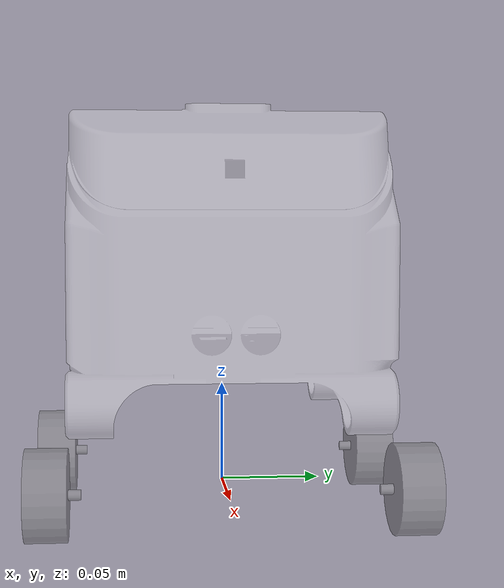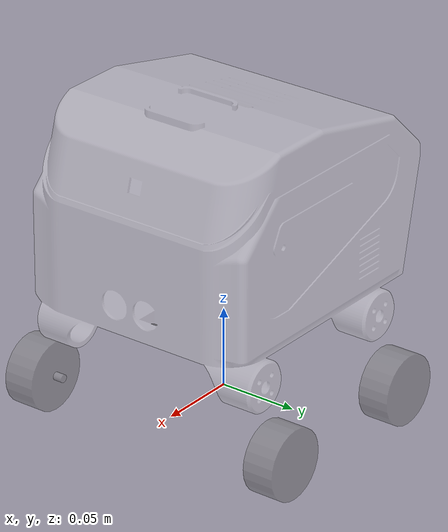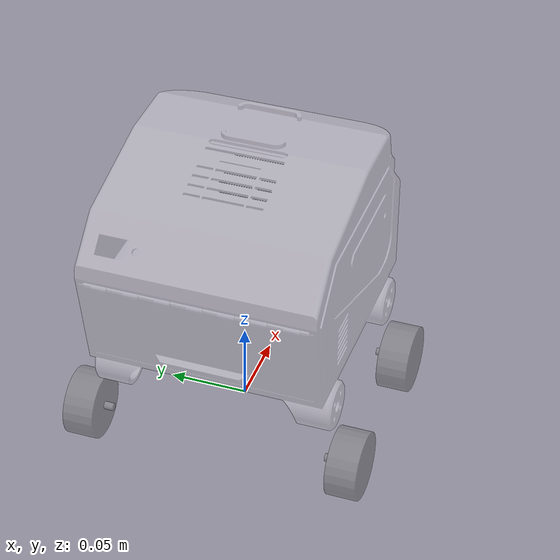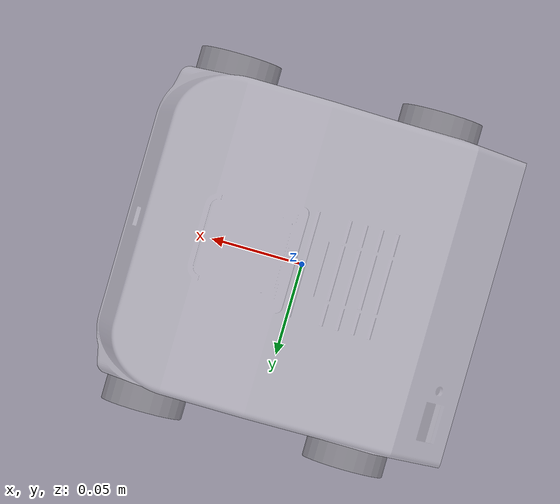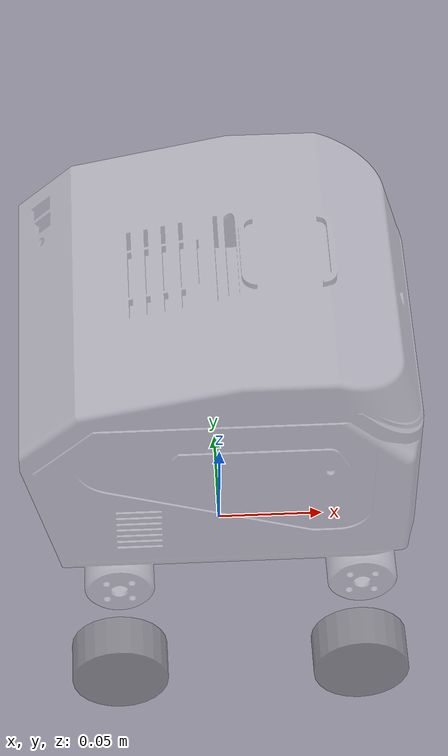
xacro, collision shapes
<?xml version="1.0" encoding="UTF-8"?>
<robot xmlns:xacro="http://www.ros.org/wiki/xacro" name="mini_robot">

    <xacro:property name="M_PI" value="3.1415926535897931" />
    <xacro:arg name="robot_name" default="mini_robot"/>
    <xacro:arg name="prefix" default=""/>
    <xacro:arg name="use_gazebo" default="true"/>

    <xacro:include filename="$(find mini_description)/urdf/mini_common_materials.xacro" />
    <xacro:include filename="$(find mini_description)/urdf/body/mini_chassis.urdf.xacro" />
    <xacro:include filename="$(find mini_description)/urdf/body/mini_wheels.urdf.xacro" />
    <xacro:include filename="$(find mini_description)/urdf/sensors/mini_lidar.urdf.xacro" />
    <xacro:include filename="$(find mini_description)/urdf/gazebo/mini_gazebo.urdf.xacro"/>
    <xacro:include filename="$(find mini_description)/urdf/ros2_control/mini_ros2_control.xacro"/>

    <xacro:mini_ros2_control prefix="$(arg prefix)" use_gazebo="$(arg use_gazebo)" />

    <xacro:if value="$(arg use_gazebo)">
        <xacro:mini_gazebo prefix="$(arg prefix)" />
    </xacro:if>

    <xacro:mini_chassis
    prefix="$(arg prefix)" />

    <xacro:front_wheel_rods
            prefix="$(arg prefix)"
            side="front_right_wheel_rod"
            x_reflect="1"
            y_reflect="-1"/>

    <xacro:front_wheel_rods
            prefix="$(arg prefix)"
            side="front_left_wheel_rod"
            x_reflect="1"
            y_reflect="1"/>

    <xacro:rear_wheel_rods
        prefix="$(arg prefix)"
        side="rear_left_wheel_rod"
        x_reflect="-1"
        y_reflect="1"/>

    <xacro:rear_wheel_rods
        prefix="$(arg prefix)"
        side="rear_right_wheel_rod"
        x_reflect="-1"
        y_reflect="-1"/>

    <xacro:front_mini_wheels
            prefix="$(arg prefix)"
            side="front_right_wheel"
            x_reflect="1"
            y_reflect="-1"/>

    <xacro:front_mini_wheels
        prefix="$(arg prefix)"
        side="front_left_wheel"
        x_reflect="1"
        y_reflect="1"/>

    <xacro:rear_mini_wheels
        prefix="$(arg prefix)"
        side="rear_left_wheel"
        x_reflect="-1"
        y_reflect="1"/>

    <xacro:rear_mini_wheels
        prefix="$(arg prefix)"
        side="rear_right_wheel"
        x_reflect="-1"
        y_reflect="-1"/>

    <xacro:mini_lidar
        prefix="$(arg prefix)"/>
</robot>

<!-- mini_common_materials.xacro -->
<robot xmlns:xacro="http://www.ros.org/wiki/xacro">
    <material name="dark_gray">
        <color rgba="0.2 0.2 0.2 1.0"/>
    </material>

    <material name="black">
        <color rgba="0.0 0.0 0.0 1.0"/>
    </material>

    <material name="white">
        <color rgba="1.0 1.0 1.0 0.3"/>
    </material>
</robot>

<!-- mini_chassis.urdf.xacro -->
<robot xmlns:xacro="http://www.ros.org/wiki/xacro">

<xacro:property name="base_width" value="0.180" />
<xacro:property name="base_length" value="0.240" />
<xacro:property name="base_height" value="0.085" />
<xacro:property name="base_mass" value="3.0" />

<xacro:macro name="mini_chassis" params="prefix">
    <link name="base_footprint"/>
    <link name="${prefix}base_link">
        <visual>
            <geometry>
                <mesh filename="package://mini_description/meshes/shifted_base.stl" scale="0.001 0.001 0.001"/>
            </geometry>

            <origin xyz="0.0 0.0 0.0" rpy="0.0 0.0 0.0"/>
            <material name="white"/>
        </visual>

        <collision>
            <geometry>
                <mesh filename="package://mini_description/meshes/shifted_base.stl" scale="0.001 0.001 0.001"/>
            </geometry>
            <origin xyz="0 0 ${base_height/2}" rpy="0 0 0"/>
        </collision>
        <inertial>
            <origin xyz="${com_x} ${com_y} ${com_z}" rpy="0 0 0"/>
            <mass value="${base_mass}"/>
            <inertia ixx="${(1/12) * base_mass * ((base_width * base_width) + (base_height * base_height))}"  ixy="0.0"  ixz="0.0"
                     iyy="${(1/12) * base_mass * ((base_length * base_length) + (base_height * base_height))}"  iyz="0.0"
                     izz="${(1/12) * base_mass * ((base_length * base_length) + (base_width * base_width))}"/>
        </inertial>
    </link>

    <joint name="${prefix}base_joint" type="fixed">
        <origin xyz="0.0 0.0 0.0235" rpy="0.0 0.0 0.0"/>
        <parent link="base_footprint"/>
        <child link="${prefix}base_link"/>
    </joint>
</xacro:macro>
</robot>

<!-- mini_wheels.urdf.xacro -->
<robot xmlns:xacro="http://www.ros.org/wiki/xacro">

    <xacro:property name="rod_radius" value="0.0025" />
    <xacro:property name="rod_width" value="0.012" />

    <xacro:property name="rod_xoff" value="0.061" />
    <xacro:property name="rod_yoff" value="0.077" />
    <xacro:property name="rod_zoff" value="-0.017003" />

    <xacro:property name="rear_rod_xoff" value="0.050" />
    <xacro:property name="rear_rod_yoff" value="0.077" />

    <xacro:property name="wheel_radius" value="0.022" />
    <xacro:property name="wheel_width" value="0.02" />
    <xacro:property name="wheel_mass" value="0.4" />

    <xacro:property name="wheel_yoff" value="${wheel_width/2}" />

    <xacro:macro name="front_wheel_rods" params="prefix side x_reflect y_reflect">
        <link name="${prefix}${side}_link">
            <visual>
                <origin xyz="0.0 0.0 0.0" rpy="${pi/2} 0.0 0.0"/>
                <geometry>
                    <cylinder radius="${rod_radius}" length="${rod_width}"/>
                </geometry>
                <material name="black">
                        <color rgba="0.5 0.5 0.5 0.5"/>
                </material>
            </visual>

            <collision>
                <origin xyz="0 0 0" rpy="${pi/2} 0 0"/>
                <geometry>
                    <cylinder radius="${rod_radius}" length="${rod_width}"/>
                </geometry>
            </collision>

            <inertial>
                <origin xyz="0 0 0" rpy="0 0 0"/>
                <mass value="${wheel_mass}"/>
                <inertia
                ixx="${(wheel_mass/12.0) * (3*wheel_radius*wheel_radius + wheel_width*wheel_width)}" ixy="0" ixz="0"
                iyy="${(wheel_mass/2.0) * (wheel_radius*wheel_radius)}" iyz="0"
                izz="${(wheel_mass/12.0) * (3*wheel_radius*wheel_radius + wheel_width*wheel_width)}"/>
            </inertial>
        </link>

        <joint name="${side}_joint" type="fixed">
            <origin xyz="${x_reflect*rod_xoff} ${y_reflect*rod_yoff} ${rod_zoff}" rpy="0.0 0.0 0.0"/>
            <parent link="${prefix}base_link"/>
            <child link="${prefix}${side}_link"/>
        </joint>
    </xacro:macro>

    <xacro:macro name="rear_wheel_rods" params="prefix side x_reflect y_reflect">
        <link name="${prefix}${side}_link">
            <visual>
                <origin xyz="0.0 0.0 0.0" rpy="${pi/2} 0.0 0.0"/>
                <geometry>
                    <cylinder radius="${rod_radius}" length="${rod_width}"/>
                </geometry>
                <material name="black">
                        <color rgba="0.5 0.5 0.5 0.5"/>
                </material>
            </visual>

            <collision>
                <origin xyz="0 0 0" rpy="${pi/2} 0 0"/>
                <geometry>
                    <cylinder radius="${rod_radius}" length="${rod_width}"/>
                </geometry>
            </collision>

            <inertial>
                <origin xyz="0 0 0" rpy="0 0 0"/>
                <mass value="${wheel_mass}"/>
                <inertia
                ixx="${(wheel_mass/12.0) * (3*wheel_radius*wheel_radius + wheel_width*wheel_width)}" ixy="0" ixz="0"
                iyy="${(wheel_mass/2.0) * (wheel_radius*wheel_radius)}" iyz="0"
                izz="${(wheel_mass/12.0) * (3*wheel_radius*wheel_radius + wheel_width*wheel_width)}"/>
            </inertial>
        </link>

        <joint name="${side}_joint" type="fixed">
            <origin xyz="${x_reflect*rear_rod_xoff} ${y_reflect*rear_rod_yoff} ${rod_zoff}" rpy="0.0 0.0 0.0"/>
            <parent link="${prefix}base_link"/>
            <child link="${prefix}${side}_link"/>
        </joint>
    </xacro:macro>

    <xacro:macro name="front_mini_wheels" params="prefix side x_reflect y_reflect">
        <link name="${prefix}${side}_link">
            <visual>
                <origin xyz="0.0 0.0 0.0" rpy="${pi/2} 0.0 0.0"/>
                <geometry>
                    <cylinder radius="${wheel_radius}" length="${wheel_width}"/>
                </geometry>
                <material name="grey">
                        <color rgba="0.5 0.5 0.5 0.5"/>
                </material>
            </visual>

            <collision>
                <origin xyz="0 0 0" rpy="${pi/2} 0 0"/>
                <geometry>
                    <cylinder radius="${wheel_radius}" length="${wheel_width}"/>
                </geometry>
            </collision>

            <inertial>
                <origin xyz="0 0 0" rpy="0 0 0"/>
                <mass value="${wheel_mass}"/>
                <inertia
                ixx="${(wheel_mass/12.0) * (3*wheel_radius*wheel_radius + wheel_width*wheel_width)}" ixy="0" ixz="0"
                iyy="${(wheel_mass/2.0) * (wheel_radius*wheel_radius)}" iyz="0"
                izz="${(wheel_mass/12.0) * (3*wheel_radius*wheel_radius + wheel_width*wheel_width)}"/>
            </inertial>
        </link>

        <joint name="${side}_joint" type="continuous">
            <origin xyz="0 ${y_reflect*wheel_yoff} 0" rpy="0.0 0.0 0.0"/>
            <parent link="${prefix}${side}_rod_link"/>
            <child link="${prefix}${side}_link"/>
            <axis xyz="0.0 1.0 0.0"/>
        </joint>
    </xacro:macro>

    <xacro:macro name="rear_mini_wheels" params="prefix side x_reflect y_reflect">
        <link name="${prefix}${side}_link">
            <visual>
                <origin xyz="0.0 0.0 0.0" rpy="${pi/2} 0.0 0.0"/>
                <geometry>
                    <cylinder radius="${wheel_radius}" length="${wheel_width}"/>
                </geometry>
                <material name="grey">
                        <color rgba="0.5 0.5 0.5 0.5"/>
                </material>
            </visual>

            <collision>
                <origin xyz="0 0 0" rpy="${pi/2} 0 0"/>
                <geometry>
                    <cylinder radius="${wheel_radius}" length="${wheel_width}"/>
                </geometry>
            </collision>

            <inertial>
                <origin xyz="0 0 0" rpy="0 0 0"/>
                <mass value="${wheel_mass}"/>
                <inertia
                ixx="${(wheel_mass/12.0) * (3*wheel_radius*wheel_radius + wheel_width*wheel_width)}" ixy="0" ixz="0"
                iyy="${(wheel_mass/2.0) * (wheel_radius*wheel_radius)}" iyz="0"
                izz="${(wheel_mass/12.0) * (3*wheel_radius*wheel_radius + wheel_width*wheel_width)}"/>
            </inertial>
        </link>

        <joint name="${side}_joint" type="continuous">
            <origin xyz="0 ${y_reflect*wheel_yoff} 0" rpy="0.0 0.0 0.0"/>
            <parent link="${prefix}${side}_rod_link"/>
            <child link="${prefix}${side}_link"/>
            <axis xyz="0.0 1.0 0.0"/>
        </joint>
    </xacro:macro>

</robot>

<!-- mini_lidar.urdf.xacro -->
<robot xmlns:xacro="http://www.ros.org/wiki/xacro">

    <xacro:property name="lidar_xoff" value="0.029" />
    <xacro:property name="lidar_yoff" value="0.0" />
    <xacro:property name="lidar_zoff" value="0.125" />

    <xacro:property name="lidar_mass" value="0.10321" />
    <xacro:property name="lidar_length" value="0.033" />
    <xacro:property name="lidar_width" value="0.042" />
    <xacro:property name="lidar_height" value="0.0348" />
    <xacro:property name="com_x" value="-0.000082" />     <!--Center of Mass-->
    <xacro:property name="com_y" value="-0.000041" />
    <xacro:property name="com_z" value="0.010541" />

    <xacro:macro name="mini_lidar" params="prefix">
        <link name="${prefix}lidar_stand_link">
            <visual>
                <origin xyz="0.0 0.0 0.0" rpy="0.0 0.0 0.0"/>
                <geometry>
                    <box size="${lidar_length} ${lidar_width} 0.01"/>
                </geometry>
                <material name="white"/>
            </visual>

            <collision>
                <origin xyz="0.0 0.0 0.0" rpy="0.0 0.0 0.0"/>
                <geometry>
                    <box size="${lidar_length} ${lidar_width} 0.01"/>
                </geometry>
            </collision>

            <inertial>
                <origin xyz="${com_x} ${com_y} ${com_z}" rpy="0 0 0"/>
                <mass value="${lidar_mass*1.25}"/>
                <inertia ixx="${(1/12) * lidar_mass * ((lidar_width * lidar_width) + (lidar_height * lidar_height))}"  ixy="0.0"  ixz="0.0"
                            iyy="${(1/12) * lidar_mass * ((lidar_length * lidar_length) + (lidar_height * lidar_height))}"  iyz="0.0"
                            izz="${(1/12) * lidar_mass * ((lidar_length * lidar_length) + (lidar_width * lidar_width))}"/>
            </inertial>
        </link>

        <joint name="base_lidar_stand_joint" type="fixed">
            <origin xyz="${lidar_xoff} ${lidar_yoff} ${lidar_zoff}" rpy="0.0 0.0 0.0"/>
            <parent link="${prefix}base_link"/>
            <child link="${prefix}lidar_stand_link"/>
        </joint>

        <link name="${prefix}lidar_link">
            <visual>
                <origin xyz="0.0 0.0 0.0" rpy="0.0 0.0 ${pi/2}"/>
                <geometry>
                    <mesh filename="package://mini_description/meshes/lidar.stl" scale="0.001 0.001 0.001"/>
                </geometry>
                <material name="black">
                        <color rgba="0.0 0.0 0.0 1.0"/>
                </material>
            </visual>

            <inertial>
                <origin xyz="${com_x} ${com_y} ${com_z}" rpy="0 0 0"/>
                <mass value="${lidar_mass*1.25}"/>
                <inertia ixx="${(1/12) * lidar_mass * ((lidar_width * lidar_width) + (lidar_height * lidar_height))}"  ixy="0.0"  ixz="0.0"
                            iyy="${(1/12) * lidar_mass * ((lidar_length * lidar_length) + (lidar_height * lidar_height))}"  iyz="0.0"
                            izz="${(1/12) * lidar_mass * ((lidar_length * lidar_length) + (lidar_width * lidar_width))}"/>
            </inertial>
        </link>

        <joint name="base_lidar_joint" type="fixed">
            <origin xyz="0 0 0.005" rpy="0.0 0.0 0.0"/>
            <parent link="${prefix}lidar_stand_link"/>
            <child link="${prefix}lidar_link"/>
        </joint>
    </xacro:macro>
</robot>
